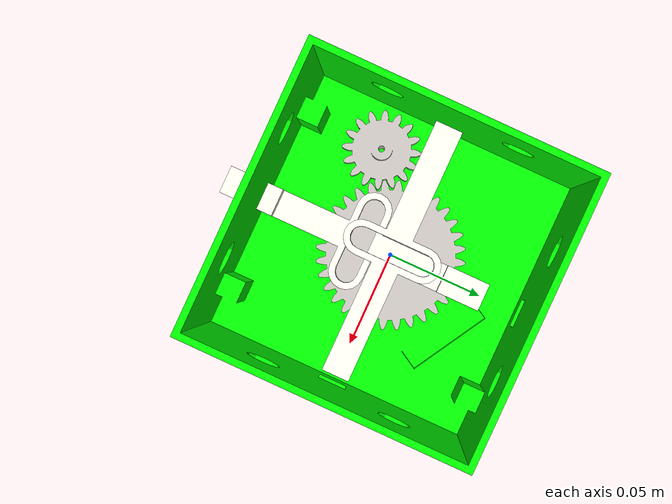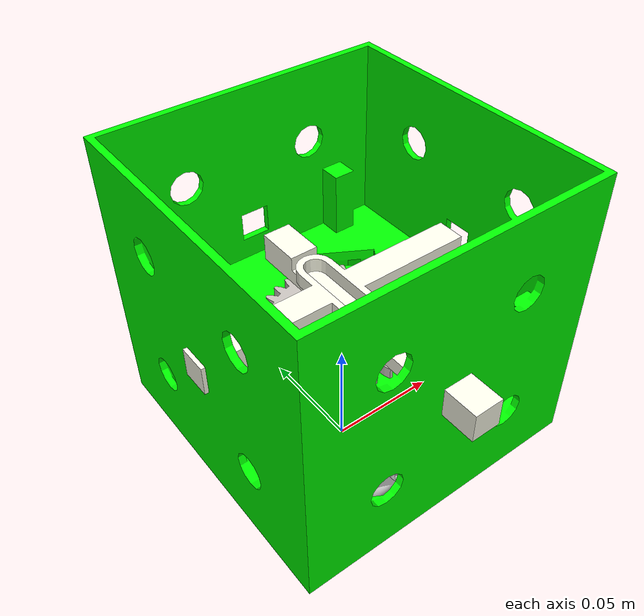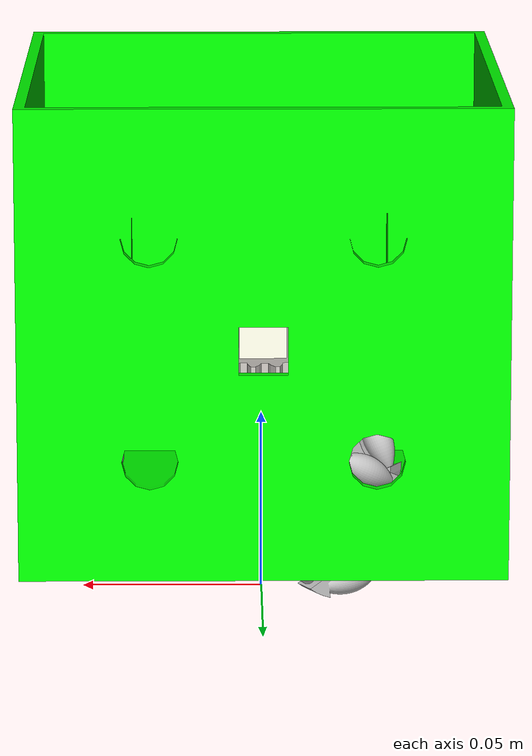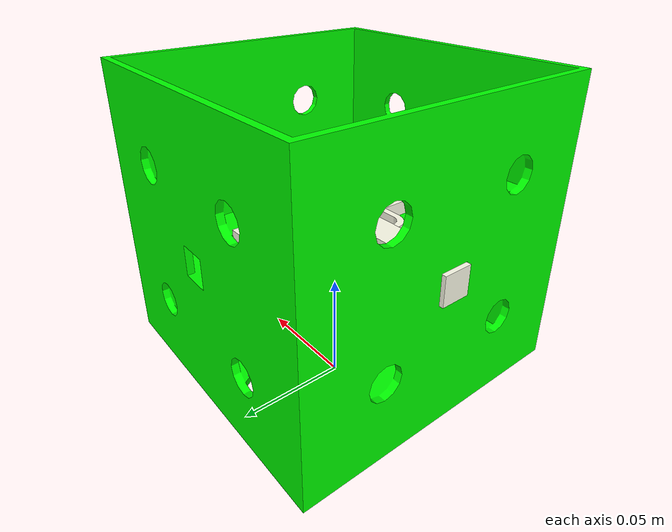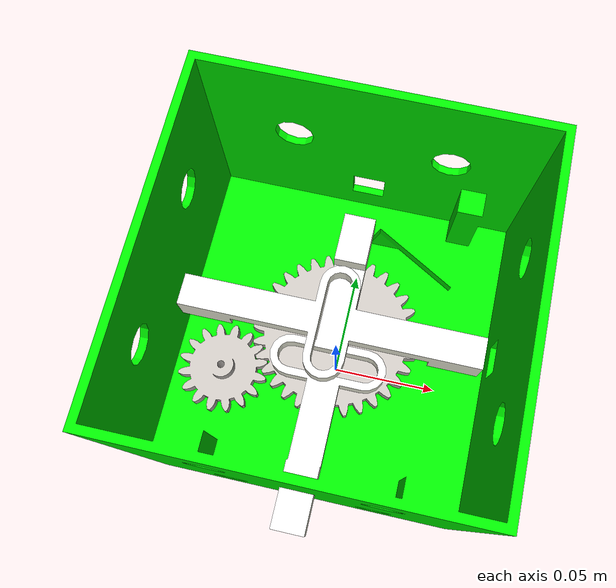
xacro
<?xml version="1.0" encoding="utf-8" ?>
<robot name="robot_docking" xmlns:xacro="http://www.ros.org/wiki/xacro">
  <xacro:include filename="$(find robot_docking)/urdf/robot_properties.xacro" />
  <xacro:include filename="$(find robot_docking)/urdf/common_properties.xacro" />
  <xacro:property name="base_edge" value="0.13"/>
  <xacro:property name="base_mass" value="0.033"/>
  <xacro:property name="base_pos" value="0.02"/>
  <xacro:property name="wheel_radius" value="0.02"/>
  <xacro:property name="wheel_length" value="0.02"/>
  <xacro:property name="wheel_mass" value="0.006"/>
  <link name="basefoot_link" />
  <link
    name="base_link">
    <inertial>
      <origin
        xyz="0.000299996753193699 -0.000738676101724914 0.0493158011467332"
        rpy="0 0 0" />
      <mass
        value="0.319986271762139" />
      <inertia
        ixx="0.00111389760044166"
        ixy="-5.44568054171093E-06"
        ixz="-2.02304849683939E-06"
        iyy="0.00110222046873689"
        iyz="2.54448439440798E-06"
        izz="0.00142810340911259" />
    </inertial>
    <visual>
      <origin
        xyz="0 0 0"
        rpy="0 0 0" />
      <geometry>
        <mesh
          filename="package://robot_docking/meshes/base_link.STL" />
      </geometry>
      <material
        name="">
        <color
          rgba="0 1 0 1" />
      </material>
    </visual>
    <collision>
      <origin
        xyz="0 0 0"
        rpy="0 0 0" />
      <geometry>
        <mesh
          filename="package://robot_docking/meshes/base_link.STL" />
      </geometry>
    </collision>
  </link>
  <joint name="basefoot_joint" type="fixed">
    <parent link="basefoot_link"/>
    <child link="base_link"/>
    <origin xyz="0 0 0.02" rpy="0 0 0"/>

  </joint>
  <link
    name="front_wheel_link">
    <inertial>
      <origin
        xyz="-0.000185240624970454 8.47068578512453E-05 1.75601486899143E-05"
        rpy="0 0 0" />
      <mass
        value="0.00691755480566768" />
      <inertia
        ixx="5.82243996732172E-07"
        ixy="-1.17470086109394E-14"
        ixz="1.14622550432559E-13"
        iyy="3.07378635100047E-07"
        iyz="-7.08882546315987E-11"
        izz="3.03751087072827E-07" />
    </inertial>
    <visual>
      <origin
        xyz="0 0 0"
        rpy="0 0 0" />
      <geometry>
        <mesh
          filename="package://robot_docking/meshes/front_wheel_link.STL" />
      </geometry>
      <material
        name="">
        <color
          rgba="0.752941176470588 0.752941176470588 0.752941176470588 1" />
      </material>
    </visual>
    <collision>
      <origin
        xyz="0 0 0"
        rpy="0 0 0" />
      <geometry>
        <mesh
          filename="package://robot_docking/meshes/front_wheel_link.STL" />
      </geometry>
    </collision>
  </link>
  <joint
    name="front_wheel_joint"
    type="continuous">
    <origin
      xyz="0.0433333333333333 -0.00020000000000002 0.00799999999999999"
      rpy="0 0 0" />
    <parent
      link="base_link" />
    <child
      link="front_wheel_link" />
    <axis
      xyz="1 0 0" />
    <limit
      effort="0.38195"
      velocity="31.416" />
    <dynamics
      damping="0.1"
      friction="0.1" />
  </joint>
  <link
    name="left_wheel_link">
    <inertial>
      <origin
        xyz="1.88093972769421E-05 -0.000203080237360819 -1.45462319701764E-05"
        rpy="0 0 0" />
      <mass
        value="0.00691755480566768" />
      <inertia
        ixx="3.75694147764389E-07"
        ixy="-1.19251631263871E-07"
        ixz="1.11530814759738E-09"
        iyy="5.13394034485272E-07"
        iyz="6.43973090634511E-10"
        izz="3.04285419017751E-07" />
    </inertial>
    <visual>
      <origin
        xyz="0 0 0"
        rpy="0 0 0" />
      <geometry>
        <mesh
          filename="package://robot_docking/meshes/left_wheel_link.STL" />
      </geometry>
      <material
        name="">
        <color
          rgba="0.752941176470588 0.752941176470588 0.752941176470588 1" />
      </material>
    </visual>
    <collision>
      <origin
        xyz="0 0 0"
        rpy="0 0 0" />
      <geometry>
        <mesh
          filename="package://robot_docking/meshes/left_wheel_link.STL" />
      </geometry>
    </collision>
  </link>
  <joint
    name="left_wheel_joint"
    type="continuous">
    <origin
      xyz="-0.0218398717474237 0.0374277674973255 0.00799999999999983"
      rpy="0 0 0" />
    <parent
      link="base_link" />
    <child
      link="left_wheel_link" />
    <axis
      xyz="-0.500000000000002 0.866025403784437 0" />
    <limit
      effort="0.38195"
      velocity="31.416" />
    <dynamics
      damping="0.1"
      friction="0.1" />
  </joint>
  <link
    name="right_wheel_link">
    <inertial>
      <origin
        xyz="0.000166197887385422 0.00011801735843614 1.69662306176849E-05"
        rpy="0 0 0" />
      <mass
        value="0.00691755480566768" />
      <inertia
        ixx="3.76094071379335E-07"
        ixy="1.19020850771271E-07"
        ixz="-8.64105503461082E-11"
        iyy="5.13527647804894E-07"
        iyz="4.98035582698257E-11"
        izz="3.03752422351457E-07" />
    </inertial>
    <visual>
      <origin
        xyz="0 0 0"
        rpy="0 0 0" />
      <geometry>
        <mesh
          filename="package://robot_docking/meshes/right_wheel_link.STL" />
      </geometry>
      <material
        name="">
        <color
          rgba="0.752941176470588 0.752941176470588 0.752941176470588 1" />
      </material>
    </visual>
    <collision>
      <origin
        xyz="0 0 0"
        rpy="0 0 0" />
      <geometry>
        <mesh
          filename="package://robot_docking/meshes/right_wheel_link.STL" />
      </geometry>
    </collision>
  </link>
  <joint
    name="right_wheel_joint"
    type="continuous">
    <origin
      xyz="-0.0214934615859098 -0.0376277674973257 0.008"
      rpy="0 0 0" />
    <parent
      link="base_link" />
    <child
      link="right_wheel_link" />
    <axis
      xyz="-0.5 -0.866025403784438 0" />
    <limit
      effort="0.38195"
      velocity="31.416" />
    <dynamics
      damping="0.1"
      friction="0.1" />
  </joint>
  <link
    name="gear_parent_link">
    <inertial>
      <origin
        xyz="-1.11022302462516E-16 1.2490009027033E-16 -0.00250000000000001"
        rpy="0 0 0" />
      <mass
        value="0.00452264984337941" />
      <inertia
        ixx="2.80265403074513E-07"
        ixy="-8.27180612553028E-25"
        ixz="1.05879118406788E-22"
        iyy="2.80265403074512E-07"
        iyz="-2.41536738865484E-22"
        izz="5.05950422035626E-07" />
    </inertial>
    <visual>
      <origin
        xyz="0 0 0"
        rpy="0 0 0" />
      <geometry>
        <mesh
          filename="package://robot_docking/meshes/gear_parent_link.STL" />
      </geometry>
      <material
        name="">
        <color
          rgba="0.776470588235294 0.756862745098039 0.737254901960784 1" />
      </material>
    </visual>
    <collision>
      <origin
        xyz="0 0 0"
        rpy="0 0 0" />
      <geometry>
        <mesh
          filename="package://robot_docking/meshes/gear_parent_link.STL" />
      </geometry>
    </collision>
  </link>
  <joint
    name="gear_parent_joint"
    type="continuous">
    <origin
      xyz="-0.0416430582439057 -0.0236699324057903 0.051"
      rpy="0 0 0" />
    <parent
      link="base_link" />
    <child
      link="gear_parent_link" />
    <axis
      xyz="0 0 1" />
    <limit
      effort="0.38195"
      velocity="31.416" />
    <dynamics
      damping="0.1"
      friction="0.1" />
  </joint>
  <link
    name="gear_child_link">
    <inertial>
      <origin
        xyz="2.77555756156289E-17 -1.38777878078145E-17 -0.00782600749720002"
        rpy="0 0 0" />
      <mass
        value="0.016442529376022" />
      <inertia
        ixx="4.08944526124647E-06"
        ixy="-3.30872245021211E-22"
        ixz="-1.05879118406788E-22"
        iyy="4.08944526124647E-06"
        iyz="-3.97046694025453E-22"
        izz="8.02453487611104E-06" />
    </inertial>
    <visual>
      <origin
        xyz="0 0 0"
        rpy="0 0 0" />
      <geometry>
        <mesh
          filename="package://robot_docking/meshes/gear_child_link.STL" />
      </geometry>
      <material
        name="">
        <color
          rgba="0.776470588235294 0.756862745098039 0.737254901960784 1" />
      </material>
    </visual>
    <collision>
      <origin
        xyz="0 0 0"
        rpy="0 0 0" />
      <geometry>
        <mesh
          filename="package://robot_docking/meshes/gear_child_link.STL" />
      </geometry>
    </collision>
  </link>
  <joint
    name="gear_child_joint"
    type="continuous">
    <origin
      xyz="0 0 0.0560000000000001"
      rpy="0 0 0" />
    <parent
      link="base_link" />
    <child
      link="gear_child_link" />
    <axis
      xyz="0 0 1" />
    <limit
      effort="0.7639"
      velocity="15.708" />
    <dynamics
      damping="0.1"
      friction="0.1" />
  </joint>
  <link
    name="docking_front_link">
    <inertial>
      <origin
        xyz="-0.00116198061453995 -4.76959860495896E-11 -0.00478195632315787"
        rpy="0 0 0" />
      <mass
        value="0.0143403454206615" />
      <inertia
        ixx="7.00800168489498E-07"
        ixy="-7.09565090001507E-15"
        ixz="-7.90343014493262E-08"
        iyy="2.29560460356564E-05"
        iyz="-3.24413089402805E-15"
        izz="2.33418727819674E-05" />
    </inertial>
    <visual>
      <origin
        xyz="0 0 0"
        rpy="0 0 0" />
      <geometry>
        <mesh
          filename="package://robot_docking/meshes/docking_front_link.STL" />
      </geometry>
      <material
        name="">
        <color
          rgba="1 1 0.92156862745098 1" />
      </material>
    </visual>
    <collision>
      <origin
        xyz="0 0 0"
        rpy="0 0 0" />
      <geometry>
        <mesh
          filename="package://robot_docking/meshes/docking_front_link.STL" />
      </geometry>
    </collision>
  </link>
  <joint
    name="docking_front_joint"
    type="prismatic">
    <origin
      xyz="-0.00399789853902596 0 0.0687000000000002"
      rpy="0 0 0" />
    <parent
      link="base_link" />
    <child
      link="docking_front_link" />
    <axis
      xyz="-1 0 0" />
    <limit
      lower="-0.015"
      upper="0.015"
      effort="509"
      velocity="0.0236" />
    <dynamics
      damping="10"
      friction="10" />
  </joint>
  <link
    name="docking_size_link">
    <inertial>
      <origin
        xyz="1.40778055879309E-10 -0.00351477760970662 -0.00156804367684215"
        rpy="0 0 0" />
      <mass
        value="0.0143403454206615" />
      <inertia
        ixx="2.29560460356564E-05"
        ixy="-7.09564736960822E-15"
        ixz="3.24413279985218E-15"
        iyy="7.00800168489502E-07"
        iyz="7.90343014493306E-08"
        izz="2.33418727819674E-05" />
    </inertial>
    <visual>
      <origin
        xyz="0 0 0"
        rpy="0 0 0" />
      <geometry>
        <mesh
          filename="package://robot_docking/meshes/docking_size_link.STL" />
      </geometry>
      <material
        name="">
        <color
          rgba="1 1 0.92156862745098 1" />
      </material>
    </visual>
    <collision>
      <origin
        xyz="0 0 0"
        rpy="0 0 0" />
      <geometry>
        <mesh
          filename="package://robot_docking/meshes/docking_size_link.STL" />
      </geometry>
    </collision>
  </link>
  <joint
    name="docking_size_joint"
    type="prismatic">
    <origin
      xyz="0 -0.01490951511319 0.0623500000000002"
      rpy="0 0 0" />
    <parent
      link="base_link" />
    <child
      link="docking_size_link" />
    <axis
      xyz="0 -1 0" />
    <limit
      lower="-0.03"
      upper="0"
      effort="509"
      velocity="0.0236" />
    <dynamics
      damping="1"
      friction="1" />
  </joint>
</robot>
